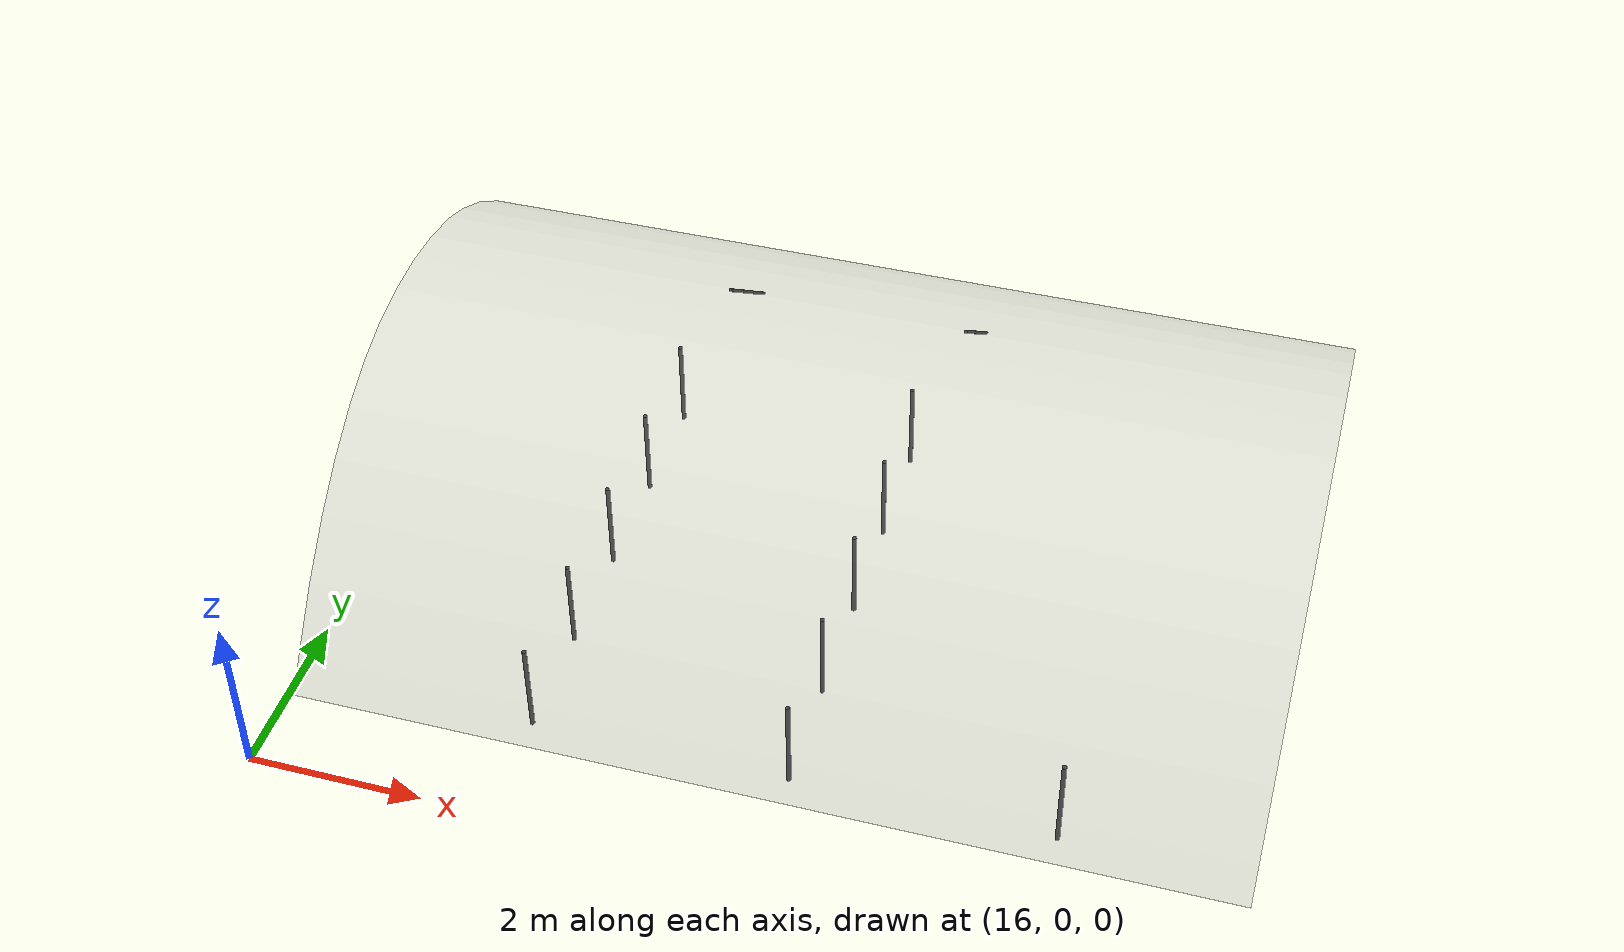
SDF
<sdf version="1.4">
 <world name="default">
  <model name="pole_65">
   <static>1</static>
   <pose>18.760 1.320 0.575 0.0 0.0 0.0</pose>
   <link name="link">
    <collision name="collision">
     <geometry><cylinder><length>1.15</length><radius>0.025</radius></cylinder></geometry>
    </collision>
    <visual name="visual">
     <geometry><cylinder><length>1.15</length><radius>0.025</radius></cylinder></geometry>
     <material>
      <script><uri>file://media/materials/scripts/gazebo.material</uri><name>Gazebo/Chrome</name></script>
      <shader type="vertex"><normal_map>__default__</normal_map></shader>
      <emissive>0.1 0.1 0.1 1</emissive>
      <specular>0.01 0.01 0.01 1</specular>
      <ambient>0.5 0.5 0.5 1</ambient>
      <diffuse>0.05 0.05 0.05 1</diffuse>
     </material>
    </visual>
   </link>
  </model>
  <model name="pole_66">
   <static>1</static>
   <pose>18.760 2.640 0.575 0.0 0.0 0.0</pose>
   <link name="link">
    <collision name="collision">
     <geometry><cylinder><length>1.15</length><radius>0.025</radius></cylinder></geometry>
    </collision>
    <visual name="visual">
     <geometry><cylinder><length>1.15</length><radius>0.025</radius></cylinder></geometry>
     <material>
      <script><uri>file://media/materials/scripts/gazebo.material</uri><name>Gazebo/Chrome</name></script>
      <shader type="vertex"><normal_map>__default__</normal_map></shader>
      <emissive>0.1 0.1 0.1 1</emissive>
      <specular>0.01 0.01 0.01 1</specular>
      <ambient>0.5 0.5 0.5 1</ambient>
      <diffuse>0.05 0.05 0.05 1</diffuse>
     </material>
    </visual>
   </link>
  </model>
  <model name="pole_67">
   <static>1</static>
   <pose>18.760 3.960 0.575 0.0 0.0 0.0</pose>
   <link name="link">
    <collision name="collision">
     <geometry><cylinder><length>1.15</length><radius>0.025</radius></cylinder></geometry>
    </collision>
    <visual name="visual">
     <geometry><cylinder><length>1.15</length><radius>0.025</radius></cylinder></geometry>
     <material>
      <script><uri>file://media/materials/scripts/gazebo.material</uri><name>Gazebo/Chrome</name></script>
      <shader type="vertex"><normal_map>__default__</normal_map></shader>
      <emissive>0.1 0.1 0.1 1</emissive>
      <specular>0.01 0.01 0.01 1</specular>
      <ambient>0.5 0.5 0.5 1</ambient>
      <diffuse>0.05 0.05 0.05 1</diffuse>
     </material>
    </visual>
   </link>
  </model>
  <model name="pole_68">
   <static>1</static>
   <pose>18.760 5.280 0.575 0.0 0.0 0.0</pose>
   <link name="link">
    <collision name="collision">
     <geometry><cylinder><length>1.15</length><radius>0.025</radius></cylinder></geometry>
    </collision>
    <visual name="visual">
     <geometry><cylinder><length>1.15</length><radius>0.025</radius></cylinder></geometry>
     <material>
      <script><uri>file://media/materials/scripts/gazebo.material</uri><name>Gazebo/Chrome</name></script>
      <shader type="vertex"><normal_map>__default__</normal_map></shader>
      <emissive>0.1 0.1 0.1 1</emissive>
      <specular>0.01 0.01 0.01 1</specular>
      <ambient>0.5 0.5 0.5 1</ambient>
      <diffuse>0.05 0.05 0.05 1</diffuse>
     </material>
    </visual>
   </link>
  </model>
  <model name="pole_69">
   <static>1</static>
   <pose>18.760 6.600 0.575 0.0 0.0 0.0</pose>
   <link name="link">
    <collision name="collision">
     <geometry><cylinder><length>1.15</length><radius>0.025</radius></cylinder></geometry>
    </collision>
    <visual name="visual">
     <geometry><cylinder><length>1.15</length><radius>0.025</radius></cylinder></geometry>
     <material>
      <script><uri>file://media/materials/scripts/gazebo.material</uri><name>Gazebo/Chrome</name></script>
      <shader type="vertex"><normal_map>__default__</normal_map></shader>
      <emissive>0.1 0.1 0.1 1</emissive>
      <specular>0.01 0.01 0.01 1</specular>
      <ambient>0.5 0.5 0.5 1</ambient>
      <diffuse>0.05 0.05 0.05 1</diffuse>
     </material>
    </visual>
   </link>
  </model>
  <model name="pole_70">
   <static>1</static>
   <pose>21.700 1.320 0.575 0.0 0.0 0.0</pose>
   <link name="link">
    <collision name="collision">
     <geometry><cylinder><length>1.15</length><radius>0.025</radius></cylinder></geometry>
    </collision>
    <visual name="visual">
     <geometry><cylinder><length>1.15</length><radius>0.025</radius></cylinder></geometry>
     <material>
      <script><uri>file://media/materials/scripts/gazebo.material</uri><name>Gazebo/Chrome</name></script>
      <shader type="vertex"><normal_map>__default__</normal_map></shader>
      <emissive>0.1 0.1 0.1 1</emissive>
      <specular>0.01 0.01 0.01 1</specular>
      <ambient>0.5 0.5 0.5 1</ambient>
      <diffuse>0.05 0.05 0.05 1</diffuse>
     </material>
    </visual>
   </link>
  </model>
  <model name="pole_71">
   <static>1</static>
   <pose>21.700 2.640 0.575 0.0 0.0 0.0</pose>
   <link name="link">
    <collision name="collision">
     <geometry><cylinder><length>1.15</length><radius>0.025</radius></cylinder></geometry>
    </collision>
    <visual name="visual">
     <geometry><cylinder><length>1.15</length><radius>0.025</radius></cylinder></geometry>
     <material>
      <script><uri>file://media/materials/scripts/gazebo.material</uri><name>Gazebo/Chrome</name></script>
      <shader type="vertex"><normal_map>__default__</normal_map></shader>
      <emissive>0.1 0.1 0.1 1</emissive>
      <specular>0.01 0.01 0.01 1</specular>
      <ambient>0.5 0.5 0.5 1</ambient>
      <diffuse>0.05 0.05 0.05 1</diffuse>
     </material>
    </visual>
   </link>
  </model>
  <model name="pole_72">
   <static>1</static>
   <pose>21.700 3.960 0.575 0.0 0.0 0.0</pose>
   <link name="link">
    <collision name="collision">
     <geometry><cylinder><length>1.15</length><radius>0.025</radius></cylinder></geometry>
    </collision>
    <visual name="visual">
     <geometry><cylinder><length>1.15</length><radius>0.025</radius></cylinder></geometry>
     <material>
      <script><uri>file://media/materials/scripts/gazebo.material</uri><name>Gazebo/Chrome</name></script>
      <shader type="vertex"><normal_map>__default__</normal_map></shader>
      <emissive>0.1 0.1 0.1 1</emissive>
      <specular>0.01 0.01 0.01 1</specular>
      <ambient>0.5 0.5 0.5 1</ambient>
      <diffuse>0.05 0.05 0.05 1</diffuse>
     </material>
    </visual>
   </link>
  </model>
  <model name="pole_73">
   <static>1</static>
   <pose>21.700 5.280 0.575 0.0 0.0 0.0</pose>
   <link name="link">
    <collision name="collision">
     <geometry><cylinder><length>1.15</length><radius>0.025</radius></cylinder></geometry>
    </collision>
    <visual name="visual">
     <geometry><cylinder><length>1.15</length><radius>0.025</radius></cylinder></geometry>
     <material>
      <script><uri>file://media/materials/scripts/gazebo.material</uri><name>Gazebo/Chrome</name></script>
      <shader type="vertex"><normal_map>__default__</normal_map></shader>
      <emissive>0.1 0.1 0.1 1</emissive>
      <specular>0.01 0.01 0.01 1</specular>
      <ambient>0.5 0.5 0.5 1</ambient>
      <diffuse>0.05 0.05 0.05 1</diffuse>
     </material>
    </visual>
   </link>
  </model>
  <model name="pole_74">
   <static>1</static>
   <pose>21.700 6.600 0.575 0.0 0.0 0.0</pose>
   <link name="link">
    <collision name="collision">
     <geometry><cylinder><length>1.15</length><radius>0.025</radius></cylinder></geometry>
    </collision>
    <visual name="visual">
     <geometry><cylinder><length>1.15</length><radius>0.025</radius></cylinder></geometry>
     <material>
      <script><uri>file://media/materials/scripts/gazebo.material</uri><name>Gazebo/Chrome</name></script>
      <shader type="vertex"><normal_map>__default__</normal_map></shader>
      <emissive>0.1 0.1 0.1 1</emissive>
      <specular>0.01 0.01 0.01 1</specular>
      <ambient>0.5 0.5 0.5 1</ambient>
      <diffuse>0.05 0.05 0.05 1</diffuse>
     </material>
    </visual>
   </link>
  </model>
  <model name="pole_75">
   <static>1</static>
   <pose>24.640 1.320 0.575 0.0 0.0 0.0</pose>
   <link name="link">
    <collision name="collision">
     <geometry><cylinder><length>1.15</length><radius>0.025</radius></cylinder></geometry>
    </collision>
    <visual name="visual">
     <geometry><cylinder><length>1.15</length><radius>0.025</radius></cylinder></geometry>
     <material>
      <script><uri>file://media/materials/scripts/gazebo.material</uri><name>Gazebo/Chrome</name></script>
      <shader type="vertex"><normal_map>__default__</normal_map></shader>
      <emissive>0.1 0.1 0.1 1</emissive>
      <specular>0.01 0.01 0.01 1</specular>
      <ambient>0.5 0.5 0.5 1</ambient>
      <diffuse>0.05 0.05 0.05 1</diffuse>
     </material>
    </visual>
   </link>
  </model>
  <model name="canopy10m_3">
   <static>1</static>
   <pose>16.720 0.000 -0.00 1.5707 0.0 1.5707</pose>
   <link name="link">
    <collision name="collision">
     <geometry><mesh><uri>model://canopy10m/canopy10m.stl</uri></mesh></geometry>
    </collision>
    <visual name="visual">
     <geometry><mesh><uri>model://canopy10m/canopy10m.stl</uri></mesh></geometry>
     <transparency>0.65</transparency>
    </visual>
   </link>
  </model>
  <model name="strut_13">
   <static>1</static>
   <pose>18.980 8.620 0.536 0.896 0.0 0.0</pose>
   <link name="link">
    <collision name="collision">
     <geometry><cylinder><length>1.76</length><radius>0.02</radius></cylinder></geometry>
    </collision>
    <visual name="visual">
     <geometry><cylinder><length>1.76</length><radius>0.02</radius></cylinder></geometry>
     <material>
      <script><uri>file://media/materials/scripts/gazebo.material</uri><name>Gazebo/Chrome</name></script>
      <shader type="vertex"><normal_map>__default__</normal_map></shader>
      <emissive>0.1 0.1 0.1 1</emissive>
      <specular>0.01 0.01 0.01 1</specular>
      <ambient>0.5 0.5 0.5 1</ambient>
      <diffuse>0.05 0.05 0.05 1</diffuse>
     </material>
    </visual>
   </link>
  </model>
  <model name="strut_14">
   <static>1</static>
   <pose>22.040 8.620 0.536 0.896 0.0 0.0</pose>
   <link name="link">
    <collision name="collision">
     <geometry><cylinder><length>1.76</length><radius>0.02</radius></cylinder></geometry>
    </collision>
    <visual name="visual">
     <geometry><cylinder><length>1.76</length><radius>0.02</radius></cylinder></geometry>
     <material>
      <script><uri>file://media/materials/scripts/gazebo.material</uri><name>Gazebo/Chrome</name></script>
      <shader type="vertex"><normal_map>__default__</normal_map></shader>
      <emissive>0.1 0.1 0.1 1</emissive>
      <specular>0.01 0.01 0.01 1</specular>
      <ambient>0.5 0.5 0.5 1</ambient>
      <diffuse>0.05 0.05 0.05 1</diffuse>
     </material>
    </visual>
   </link>
  </model>
  <include><uri>model://sun</uri></include>
 </world>
</sdf>
